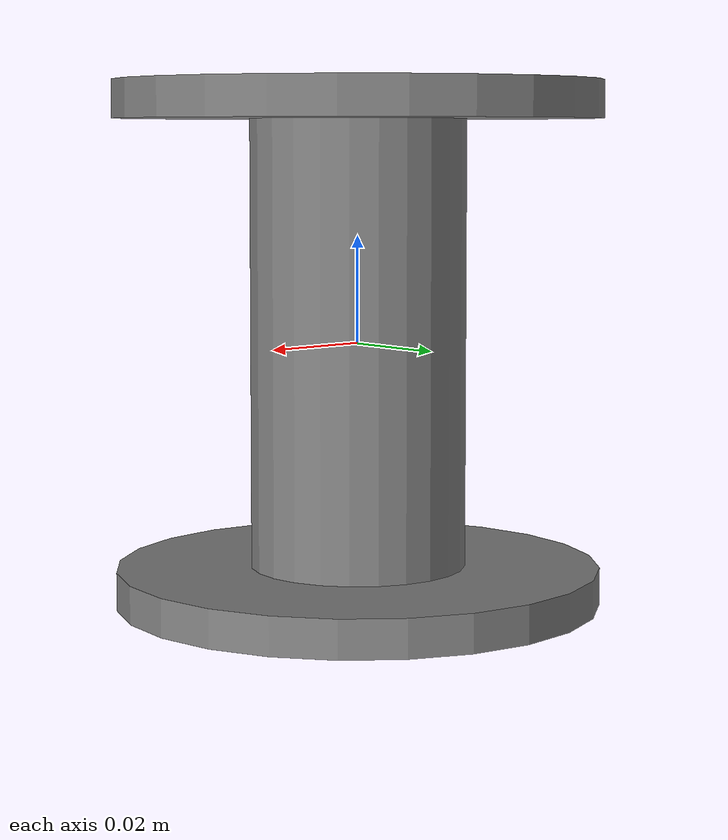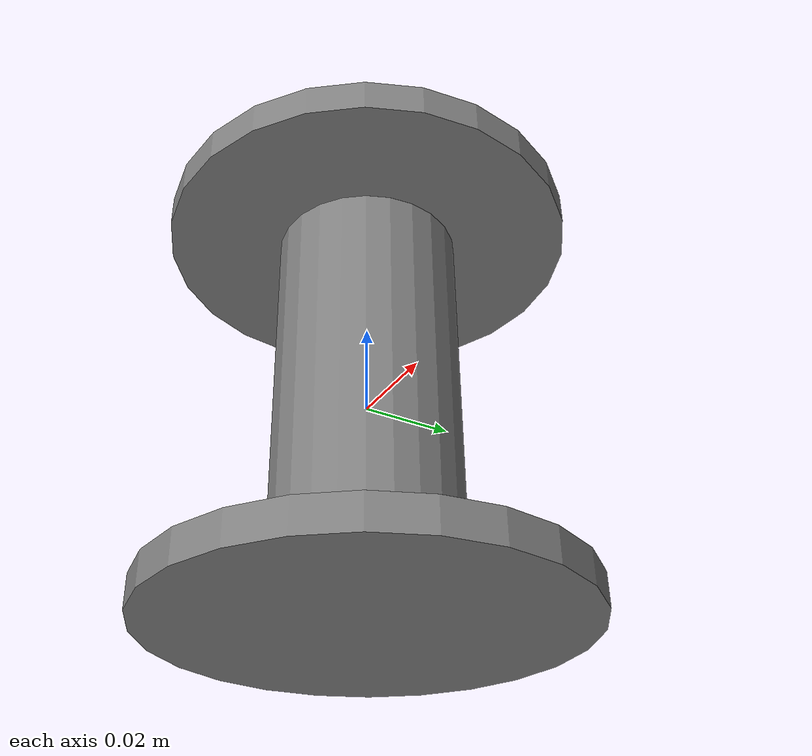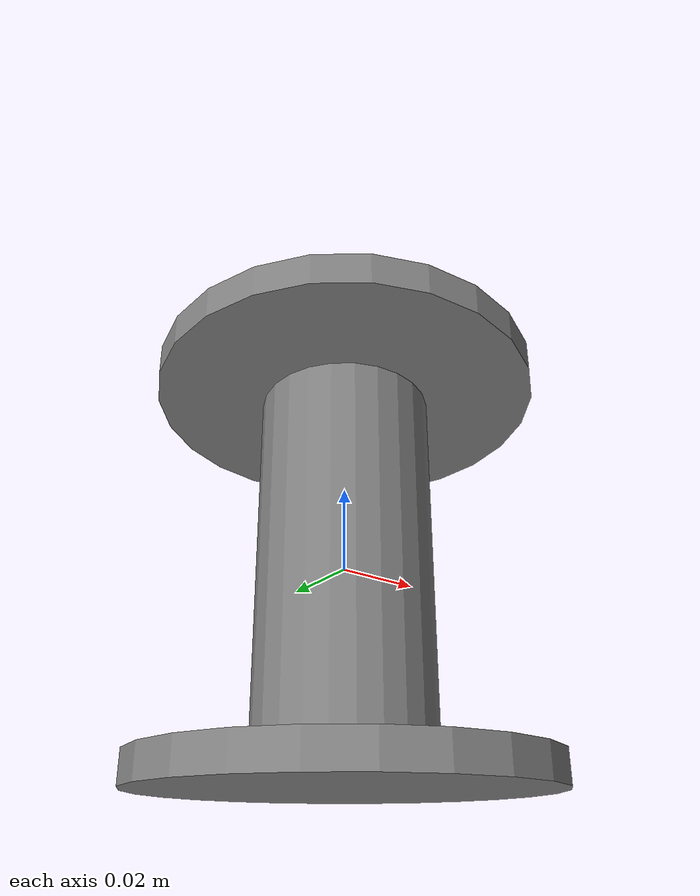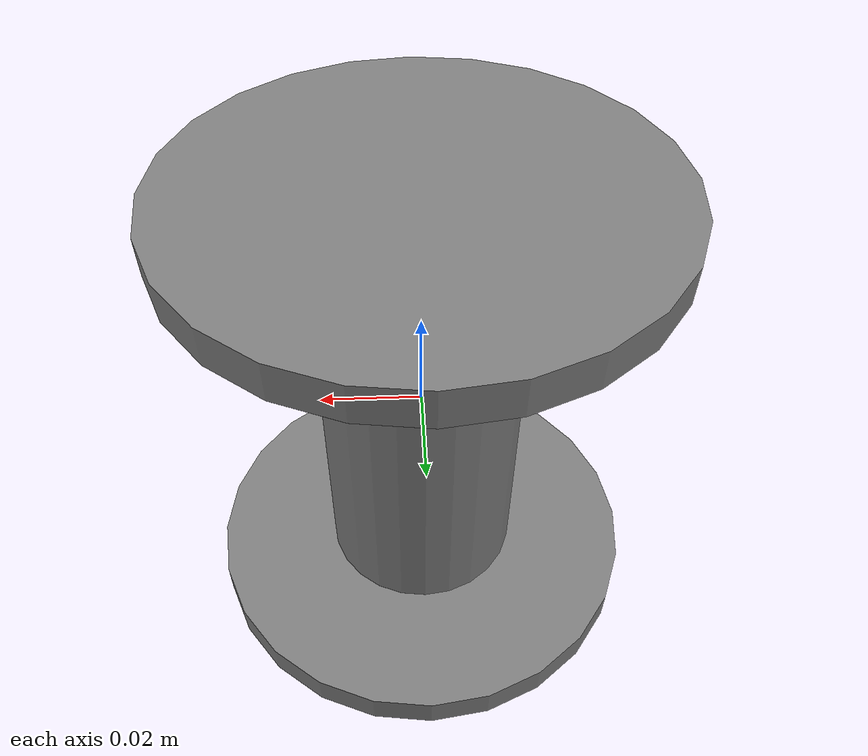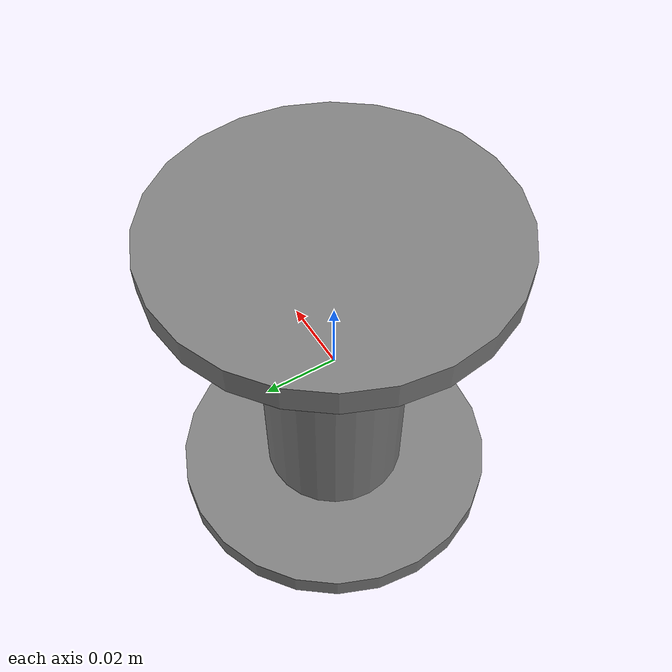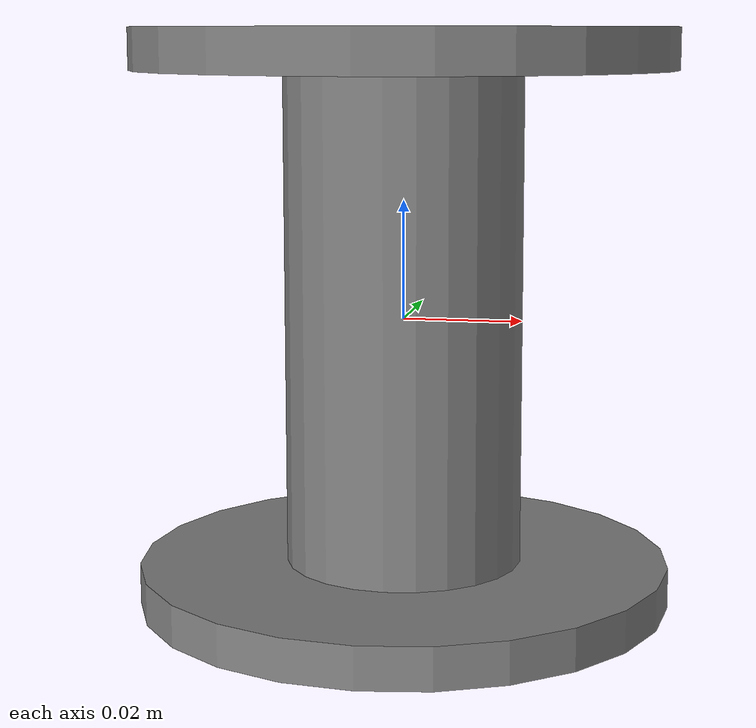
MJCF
<mujoco model="dumbbell">
  <asset>
    <texture file="../textures/metal.png" type="cube" name="ceramic-met"/>
    <material name="sceramic" reflectance="0.5" shininess="1.0" specular="1.0" texrepeat="1 1" texture="ceramic-met" texuniform="true"/>
  </asset>
  <worldbody>
    <body>

      <body name="object" pos="0 0 0">
        <geom pos="0 0 0" size="0.02 0.045" type="cylinder" group="0" friction="1 1 1" condim="4" solimp="0.99 0.99 0.01" solref="0.001 1"/>
        <geom pos="0 0 0" material="sceramic" size="0.02 0.045" type="cylinder" conaffinity="0" contype="0" group="0" mass="0.001" condim="4" solimp="0.99 0.99 0.01" solref="0.001 1"/>
        <geom pos="0 0 0.045" size="0.045 0.0035" type="cylinder" group="0" friction="1 1 1 " condim="4" solimp="0.99 0.99 0.01" solref="0.001 1" />
        <geom pos="0 0 0.045" material="sceramic" size="0.045 0.0035" type="cylinder" conaffinity="0" contype="0" group="0" mass="0.001" condim="4" solimp="0.99 0.99 0.01" solref="0.001 1"/>
        <geom pos="0 0 -0.045" size="0.045 0.0035" type="cylinder" group="0" friction="1 1 1 " condim="4" solimp="0.99 0.99 0.01" solref="0.001 1" />
        <geom pos="0 0 -0.045" material="sceramic" size="0.045 0.0035" type="cylinder" conaffinity="0" contype="0" group="0" mass="0.001" condim="4" solimp="0.99 0.99 0.01" solref="0.001 1"/>
      </body>

      <site rgba="0 0 0 0" size="0.001" pos="0.0 0.0 -0.052" name="bottom_site"/>
      <site rgba="0 0 0 0" size="0.001" pos="0.0 0.0 0.052" name="top_site"/>
      <site rgba="0 0 0 0" size="0.001" pos="0.045 0 0" name="horizontal_radius_site"/>
    </body>
  </worldbody>
</mujoco>
